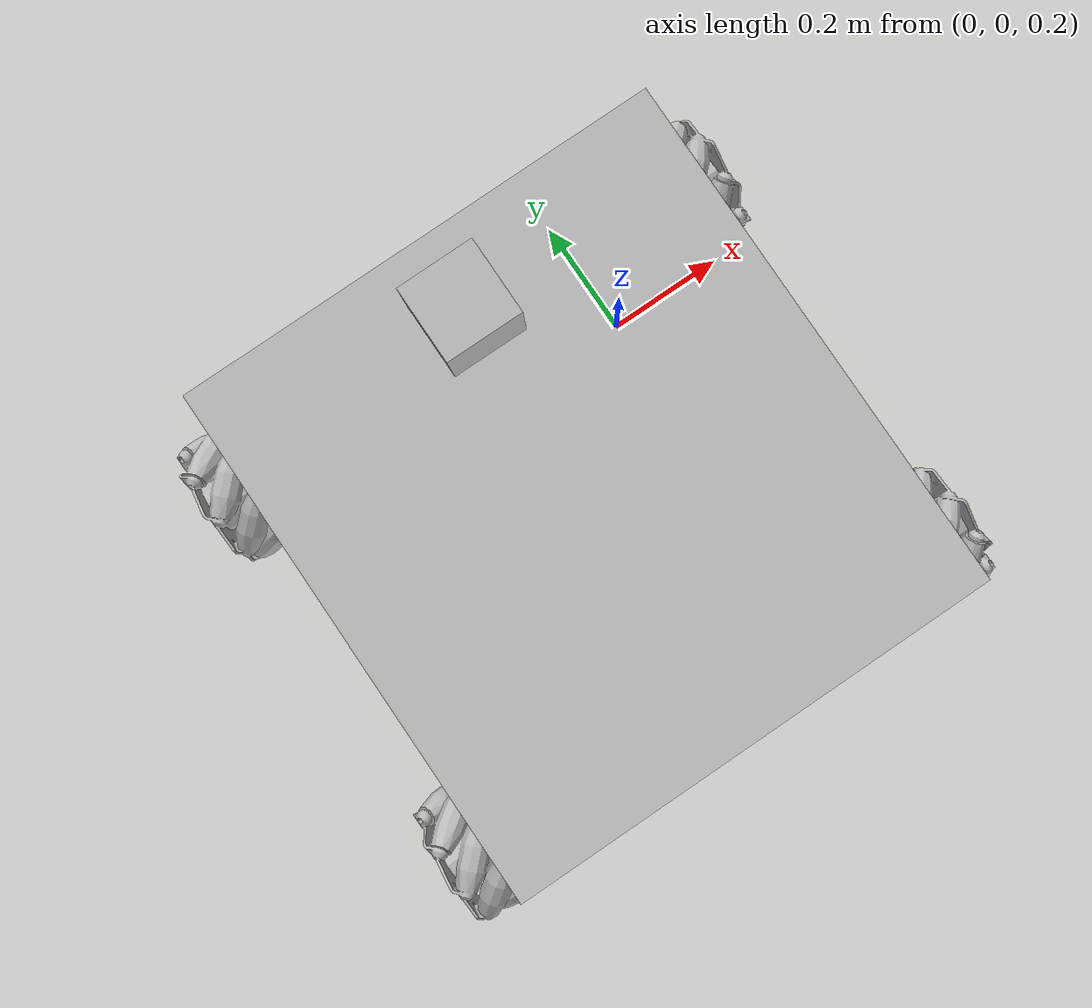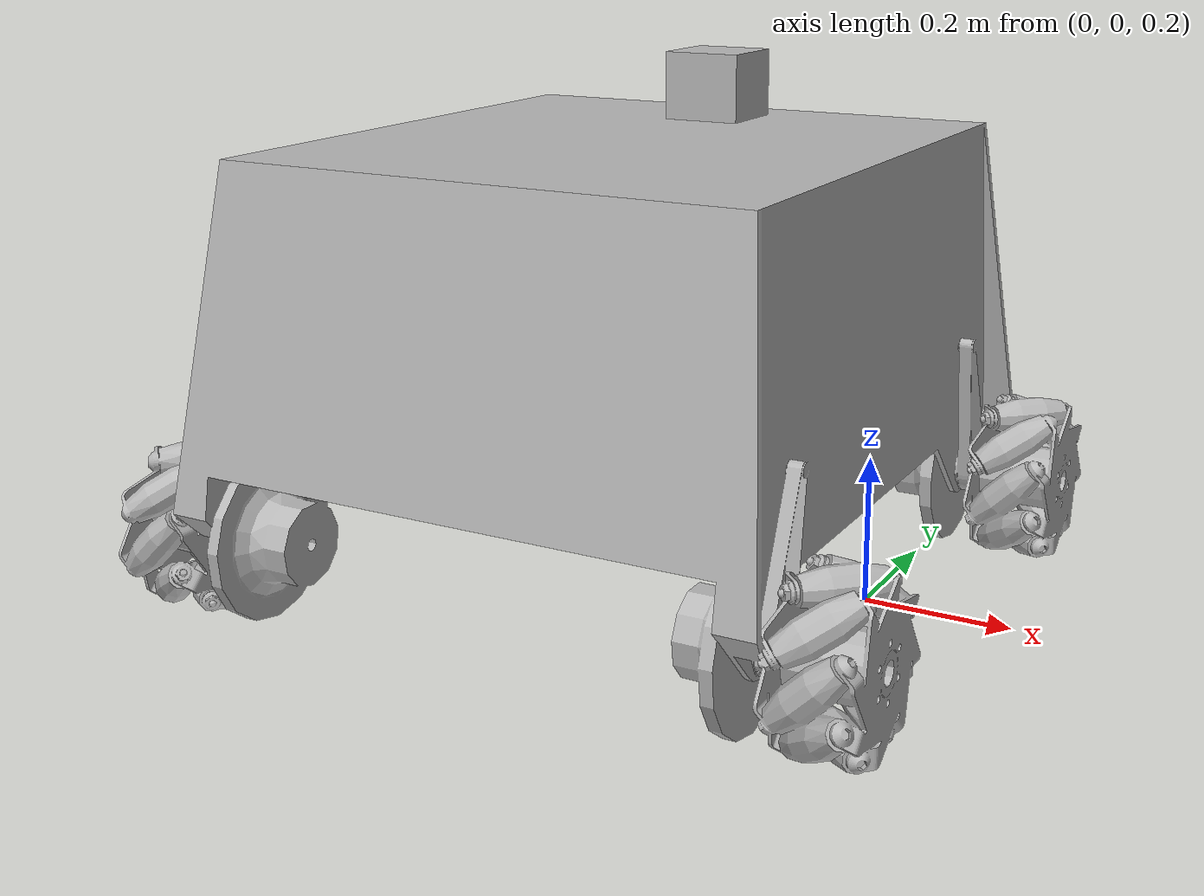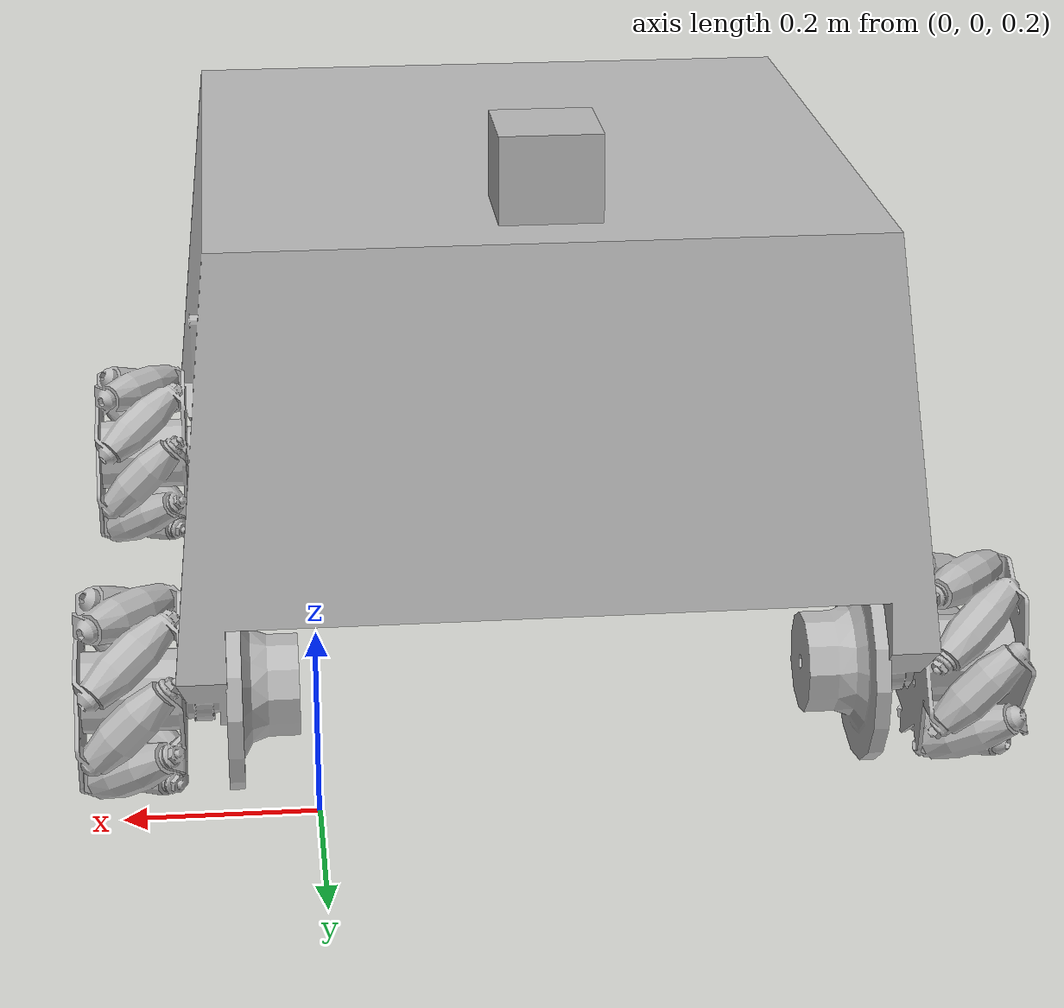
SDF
<?xml version="1.0"?>
<sdf version="1.5">
	<model name="robot">
	<gravity>true</gravity>
		<include>
			<uri>model://agro/models/robot_body</uri>
		</include>

		<include>
			<uri>model://agro/models/mecanum_wheel_right</uri>
			<name>mecanum_wheel_1</name>
			<pose>0.2279 0.0795 0.4075 0 0 1.5708</pose>
		</include>

		<include>
			<uri>model://agro/models/mecanum_wheel_left</uri>
			<name>mecanum_wheel_2</name>
			<pose>0.2279 -0.5615 0.4075 0 0 1.5708</pose>
		</include>

		<include>
			<uri>model://agro/models/mecanum_wheel_right</uri>
			<name>mecanum_wheel_3</name>
			<pose>-0.6839 -0.5615 0.4075 0 0 -1.5708</pose>
		</include>

		<include>
			<uri>model://agro/models/mecanum_wheel_left</uri>
			<name>mecanum_wheel_4</name>
			<pose>-0.6839 0.0795 0.4075 0 0 -1.5708</pose>
		</include>

		<include>
			<uri>model://agro/models/rail_wheel</uri>
			<name>rail_wheel_1</name>
			<pose>-0.01 0.08 0.3835 0 0 0</pose>
		</include>

		<include>
			<uri>model://agro/models/rail_wheel</uri>
			<name>rail_wheel_2</name>
			<pose>-0.01 -0.561 0.3835 0 0 0</pose>
		</include>

		<include>
			<uri>model://agro/models/rail_wheel</uri>
			<name>rail_wheel_3</name>
			<pose>-0.447 -0.561 0.3835 0 0 3.1415</pose>
		</include>

		<include>
			<uri>model://agro/models/rail_wheel</uri>
			<name>rail_wheel_4</name>
			<pose>-0.447 0.08 0.3835 0 0 3.1415</pose>
		</include>

		<include>
			<uri>model://agro/models/camera</uri>
			<pose>-0.23 0 0.87 0 0 1.5708</pose>
		</include>

		<joint type="revolute" name="body-wheel_1">

			<pose>0 0 -0.024 0 0 0</pose>

			<parent> body::base </parent>
			<child> mecanum_wheel_1::base</child>

			<axis>
				<xyz>0 1 0</xyz>

				<limit>
					<lower>-1.79769e+308</lower>
					<upper>1.79769e+308</upper>
				</limit>
			</axis>
		</joint>

		<joint type="revolute" name="body-wheel_2">

			<pose>0 0 -0.024 0 0 0</pose>

			<parent> body::base </parent>
			<child> mecanum_wheel_2::base </child>

			<axis>
				<xyz>0 1 0</xyz>

				<limit>
					<lower>-1.79769e+308</lower>
					<upper>1.79769e+308</upper>
				</limit>
			</axis>
		</joint>

		<joint type="revolute" name="body-wheel_3">

			<pose>0 0 -0.024 0 0 3.1415</pose>

			<parent> body::base </parent>
			<child> mecanum_wheel_3::base </child>

			<axis>
				<xyz>0 1 0</xyz>

				<limit>
					<lower>-1.79769e+308</lower>
					<upper>1.79769e+308</upper>
				</limit>
			</axis>
		</joint>

		<joint type="revolute" name="body-wheel_4">

			<pose>0 0 -0.024 0 0 3.1415</pose>

			<parent> body::base </parent>
			<child> mecanum_wheel_4::base </child>

			<axis>
				<xyz>0 1 0</xyz>

				<limit>
					<lower>-1.79769e+308</lower>
					<upper>1.79769e+308</upper>
				</limit>
			</axis>
		</joint>

		<joint type="revolute" name="body-wheel_5">

			<pose>0 0 0 0 0 0</pose>

			<parent> body::base </parent>
			<child> rail_wheel_1::base </child>

			<axis>
				<xyz>-1 0 0</xyz>

				<limit>
					<lower>-1.79769e+308</lower>
					<upper>1.79769e+308</upper>
				</limit>
			</axis>
		</joint>

		<joint type="revolute" name="body-wheel_6">

			<pose>0 0 0 0 0 0</pose>

			<parent> body::base </parent>
			<child> rail_wheel_2::base </child>

			<axis>
				<xyz>-1 0 0</xyz>

				<limit>
					<lower>-1.79769e+308</lower>
					<upper>1.79769e+308</upper>
				</limit>
			</axis>
		</joint>

		<joint type="revolute" name="body-wheel_7">

			<pose>0 0 0 0 0 0</pose>

			<parent> body::base </parent>
			<child> rail_wheel_3::base </child>

			<axis>
				<xyz>-1 0 0</xyz>

				<limit>
					<lower>-1.79769e+308</lower>
					<upper>1.79769e+308</upper>
				</limit>
			</axis>
		</joint>

		<joint type="revolute" name="body-wheel_8">

			<pose>0 0 0 0 0 0</pose>

			<parent> body::base </parent>
			<child> rail_wheel_4::base </child>

			<axis>
				<xyz>-1 0 0</xyz>

				<limit>
					<lower>-1.79769e+308</lower>
					<upper>1.79769e+308</upper>
				</limit>
			</axis>
		</joint>

		<joint type="fixed" name="body-camera">
			<pose> 0 0 0 0 0 0 </pose>

			<parent> body::base </parent>
			<child> camera::base </child>
		</joint>

		<sensor name="imu_sensor" type="imu">
			<always_on>true</always_on>
			<update_rate>100</update_rate>
			<visualize>true</visualize>
			<topic>__default_topic__</topic>
			<plugin filename="libgazebo_ros_imu_sensor.so" name="imu_plugin">
				<topicName>imu</topicName>
				<bodyName>imu_link</bodyName>
				<updateRateHZ>10.0</updateRateHZ>
				<gaussianNoise>0.0</gaussianNoise>
				<xyzOffset>0 0 0</xyzOffset>
				<rpyOffset>0 0 0</rpyOffset>
				<frameName>imu_link</frameName>
				<initialOrientationAsReference>false</initialOrientationAsReference>
			</plugin>
			<pose>0 0 0 0 0 0</pose>
   		</sensor>

		<plugin name="robot_control_plugin" filename="./librobot_control_plugin.so">
		<commandTopic>cmd_vel</commandTopic>
      	<odometryTopic>odom</odometryTopic>
      	<odometryFrame>odom</odometryFrame>
      	<odometryRate>20.0</odometryRate>
		</plugin>
	</model>
</sdf>

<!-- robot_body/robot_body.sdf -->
<sdf version="1.5">
  <model name="body">
    <!-- Give the base link a unique name -->
    <pose>0 0 0 0 0 0</pose>
    <link name="base">
      <inertial>
        <mass>60.0</mass>
          <inertia>
              <ixx>18.889</ixx>
              <iyy>15.40</iyy>
              <izz>24.8</izz>
              <ixy>12.28</ixy>
              <ixz>7.11</ixz>
              <iyz>8.19</iyz>
          </inertia>
      </inertial>

      <visual name="base_visual">
        <geometry>
          <mesh>
            <uri>model://agro/models/robot_body/meshes/robot_body.obj</uri>
          </mesh>
        </geometry>
      </visual>

      <collision name="base_collision">
        <geometry>
          <mesh>
            <uri>model://agro/models/robot_body/meshes/robot_body.obj</uri>
          </mesh>
        </geometry>
      </collision>
    </link>

  </model>
</sdf>

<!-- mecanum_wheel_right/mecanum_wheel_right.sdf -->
<sdf version="1.5">
  <model name="mecanum_wheel_right">
  	<gravity>true</gravity>
    <!-- Give the base link a unique name -->
    <pose>0 0 0 0 0 0</pose>
    <link name="base">
      <inertial>
        <mass>0.6</mass>
          <inertia>
            <ixx>0.02</ixx>
            <iyy>0.02</iyy>
            <izz>0.02</izz>
            <ixy>0.01</ixy>
            <ixz>0.01</ixz>
            <iyz>0.01</iyz>
          </inertia>
      </inertial>

      <collision name="base_collision">
        <geometry>
          <mesh>
            <uri>model://agro/models/mecanum_wheel_right/meshes/mecanum_wheel.obj</uri>
          </mesh>
        </geometry>
        <surface>
          <friction>
            <ode>
              <mu>0.00</mu>
              <mu2>0.00</mu2>
            </ode>
          </friction>
        </surface>
      </collision>

      <visual name="base_visual" type="fixed">
        <geometry>
          <mesh>
            <uri>model://agro/models/mecanum_wheel_right/meshes/mecanum_wheel.obj</uri>
          </mesh>
        </geometry>
      </visual>
    </link>
  </model>
</sdf>

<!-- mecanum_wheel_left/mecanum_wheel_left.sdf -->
<sdf version="1.5">
  <model name="mecanum_wheel_left">
    <!-- Give the base link a unique name -->
    <gravity>true</gravity>
    <pose>0 0 0 0 0 0</pose>
    <link name="base">
      <inertial>
        <mass>0.6</mass>
          <inertia>
            <ixx>0.02</ixx>
            <iyy>0.02</iyy>
            <izz>0.02</izz>
            <ixy>0.01</ixy>
            <ixz>0.01</ixz>
            <iyz>0.01</iyz>
          </inertia>
      </inertial>

      <collision name="base_collision">
        <geometry>
          <mesh>
            <uri>model://agro/models/mecanum_wheel_left/meshes/mecanum_wheel.obj</uri>
          </mesh>
        </geometry>
        <surface>
          <friction>
            <ode>
              <mu>0.00</mu>
              <mu2>0.00</mu2>
            </ode>
          </friction>
        </surface>
      </collision>

      <visual name="base_visual">
        <geometry>
          <mesh>
            <uri>model://agro/models/mecanum_wheel_left/meshes/mecanum_wheel.obj</uri>
          </mesh>
        </geometry>
      </visual>
    </link>
  </model>
</sdf>

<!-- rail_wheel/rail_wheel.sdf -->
<sdf version="1.5">
  <model name="rail_wheel">
    <!-- Give the base link a unique name -->
    <gravity>true</gravity>
    <pose>0 0 0 0 0 0</pose>
    <link name="base">
      <inertial>
        <mass>0.8</mass>
          <inertia>
            <ixx>0.003</ixx>
            <iyy>0.003</iyy>
            <izz>0.003</izz>
            <ixy>0.002</ixy>
            <ixz>0.002</ixz>
            <iyz>0.002</iyz>
          </inertia>
      </inertial>

      <visual name="base_visual">
        <geometry>
          <mesh>
            <uri>model://agro/models/rail_wheel/meshes/rail_wheel.obj</uri>
          </mesh>
        </geometry>
      </visual>

      <collision name="base_collision">
        <geometry>
          <mesh>
            <uri>model://agro/models/rail_wheel/meshes/rail_wheel.obj</uri>
          </mesh>
        </geometry>
      </collision>
    </link>

  </model>
</sdf>

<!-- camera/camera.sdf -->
<sdf version="1.5">
	<model name="camera">
		<link name="base">
			<inertial>
	        	<mass>0.1</mass>
	          		<inertia>
			            <ixx>0.000166667</ixx>
			            <iyy>0.000166667</iyy>
			            <izz>0.000166667</izz>
			            <ixy>0</ixy>
			            <ixz>0</ixz>
			            <iyz>0</iyz>
	         		 </inertia>
	        </inertial>
	        <collision name='collision'>
		        <geometry>
		            <box>
		              	<size>0.1 0.1 0.1</size>
		            </box>
		        </geometry>
	        </collision>
	        <visual name='visual'>
		          <geometry>
			            <box>
			              	<size>0.1 0.1 0.1</size>
			            </box>
		          </geometry>
	        </visual>

		    <sensor name="color" type="camera">
		        <pose frame="">0 -0.046 0.004 0 0 0</pose>
		        <camera>
		          	<horizontal_fov>1.047</horizontal_fov>
			        <image>
			            <width>640</width>
			            <height>480</height>
			            <format>RGB_INT8</format>
			        </image>
			        <clip>
			            <near>0.1</near>
			            <far>100</far>
			        </clip>
			        <noise>
			            <type>gaussian</type>
			            <mean>0.0</mean>
			            <stddev>0.007</stddev>
			        </noise>
		        </camera>
		        <always_on>1</always_on>
		        <update_rate>60</update_rate>
		        <visualize>1</visualize>
	      	</sensor>

	        <sensor name='camera' type='depth'>
	        	<pose frame="">0 -0.03 0.004 0 0 0</pose>
		        <camera>
		            <horizontal_fov>1.047</horizontal_fov>
		            <image>
			            <width>640</width>
			            <height>480</height>
		            </image>
		            <clip>
		              	<near>0.1</near>
		              	<far>100</far>
		            </clip>
		        </camera>
		        <plugin name="camera_controller" filename="libgazebo_ros_depth_camera.so">
		            <robotNamespace>robot</robotNamespace>
		            <alwaysOn>true</alwaysOn>
		            <updateRate>30.0</updateRate>
		            <cameraName>depth_color_camera</cameraName>
		            <imageTopicName>camera/image_raw</imageTopicName>
		            <cameraInfoTopicName>camera/camera_info</cameraInfoTopicName>
		            <pointCloudTopicName>camera/points</pointCloudTopicName>
		            <frameName>camera</frameName>
		            <hackBaseline>0.07</hackBaseline>
		            <distortionK1>0.0</distortionK1>
		            <distortionK2>0.0</distortionK2>
		            <distortionK3>0.0</distortionK3>
		            <distortionT1>0.0</distortionT1>
		            <distortionT2>0.0</distortionT2>
		         </plugin>
		        <always_on>1</always_on>
		        <update_rate>30.0</update_rate>
		        <visualize>1</visualize>
	        </sensor>
		</link>
	</model>
</sdf>
